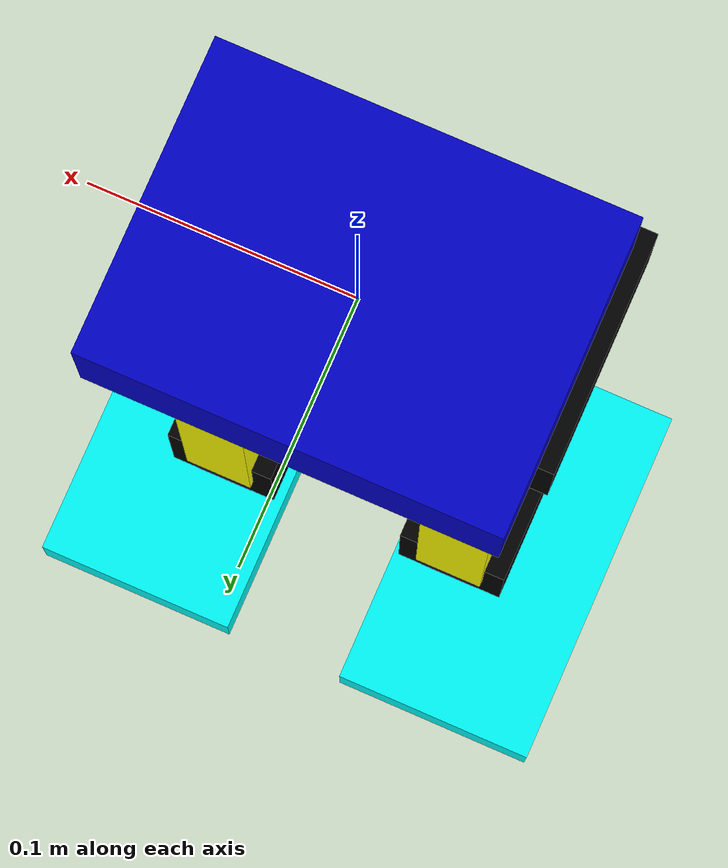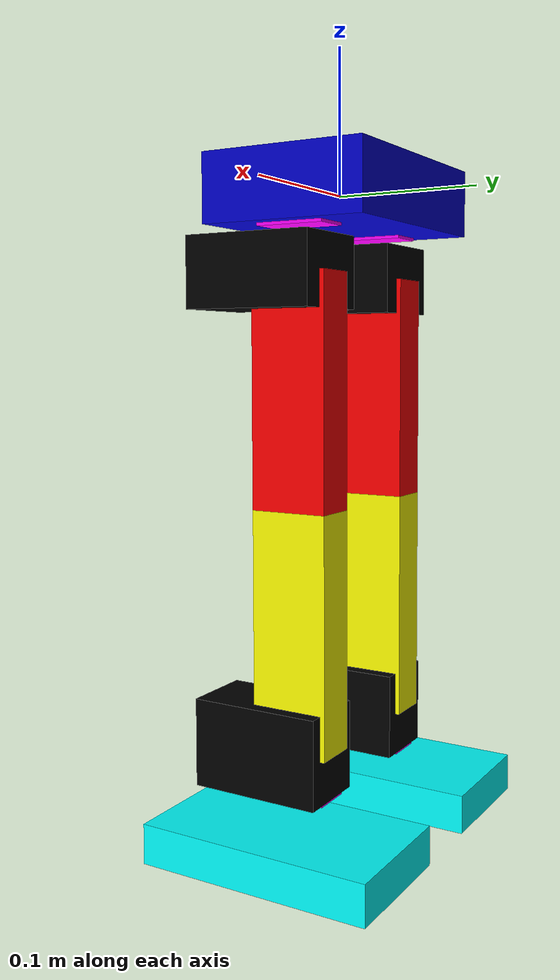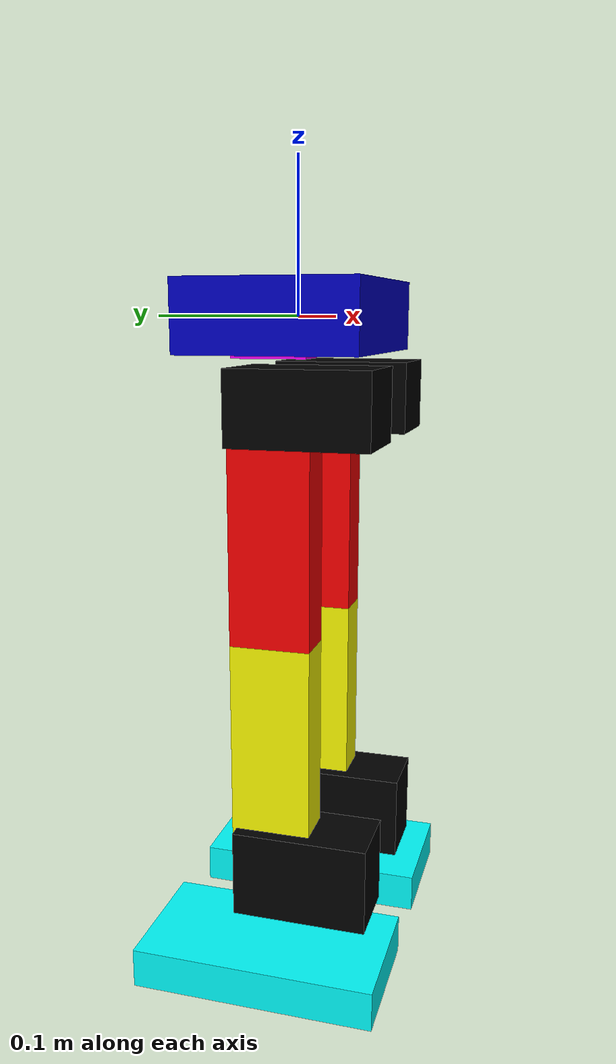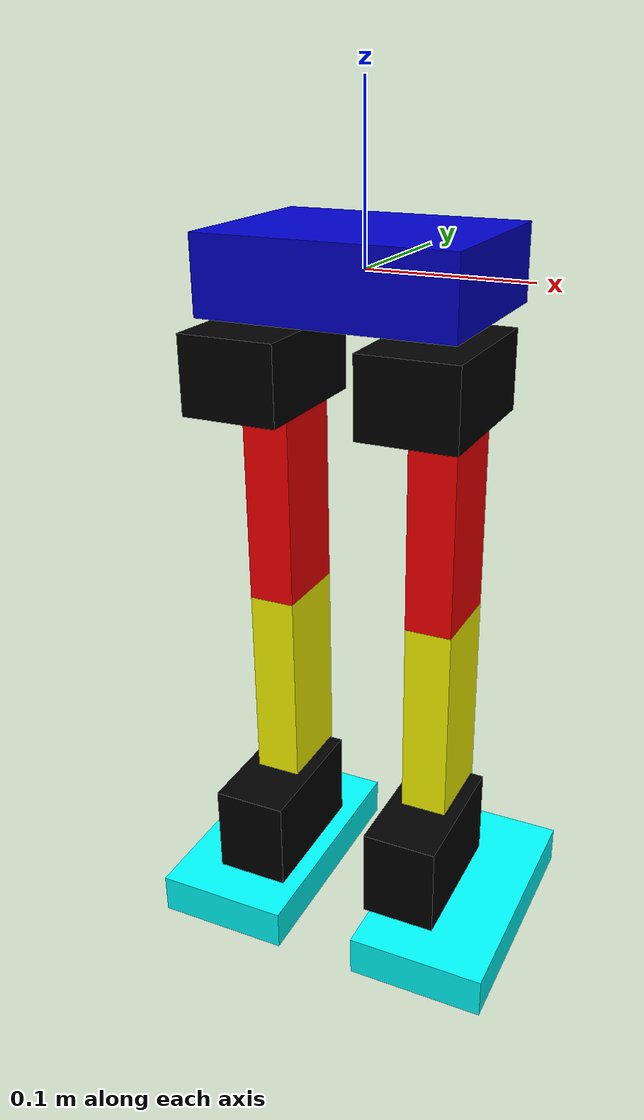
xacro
<?xml version="1.0"?>
<robot name="macroed" xmlns:xacro="http://ros.org/wiki/xacro">

 <!-- Unit in this file is determine in meter and kilogram -->

<!-- ###########################################################set up property #################################################################-->
  <xacro:property name="base_width" value="0.156" />
  <xacro:property name="base_length" value="0.118"/>
  <xacro:property name="base_height" value="0.0464"/>
  <xacro:property name="base_height_pos" value="1"/>

  <xacro:property name="right_hip_width" value="0.026"/>
  <xacro:property name="right_hip_length" value="0.048"/>
  <xacro:property name="right_hip_height" value="0.002"/>

  <xacro:property name="foot_width" value="0.027"/>
  <xacro:property name="foot_length" value="0.09"/>
  <xacro:property name="foot_height" value="0.165"/>

  <xacro:property name="upper_foot_width" value="0.026"/>
  <xacro:property name="upper_foot_length" value="0.054"/>
  <xacro:property name="upper_foot_height" value="0.029"/>

  <xacro:property name="right_bum_width" value="0.048"/>
  <xacro:property name="right_bum_length" value="0.0922"/>
  <xacro:property name="right_bum_height" value="0.06"/>

  <xacro:property name="upper_leg_width" value="0.054"/>
  <xacro:property name="upper_leg_length" value="0.03"/>
  <xacro:property name="upper_leg_height" value="0.1553"/>

  <xacro:property name="lower_leg_width" value="0.03"/>
  <xacro:property name="lower_leg_length" value="0.054"/>
  <xacro:property name="lower_leg_height" value="0.16039"/>

  <xacro:property name="ankel_width" value="0.048"/>
  <xacro:property name="ankel_length" value="0.0922"/>
  <xacro:property name="ankel_height" value="0.06"/>

  <xacro:property name="dynamixel_xm540_effort" value="10"/>
  <xacro:property name="dynamixel_xm540_velocity" value="3.1415"/>
  <xacro:property name="dynamixel_xm540_lower_limit" value="-3.14"/>
  <xacro:property name="dynamixel_xm540_upper_limit" value="3.14"/>

  <xacro:property name="dynamixel_xm430_effort" value="4.1"/>
  <xacro:property name="dynamixel_xm430_velocity" value="4.82"/>
  <xacro:property name="dynamixel_xm430_lower_limit" value="-3.14"/>
  <xacro:property name="dynamixel_xm430_upper_limit" value="3.14"/>

  <xacro:property name="pi" value="3.1415"/>
<!-- ###########################################################set up property #################################################################-->

<!-- ###########################################################set up material #################################################################-->
  <material name="blue">
    <color rgba="0 0 0.8 1"/>
  </material>

  <material name="black">
    <color rgba="0 0 0 1"/>
  </material>

  <material name="white">
    <color rgba="1 1 1 1"/>
  </material>

  <material name="red">
  <color rgba="1 0 0 1"/>
  </material>

  <material name="yellow">
  <color rgba="1 1 0 1"/>
  </material>

  <material name="turqouise">
  <color rgba="0 1 1 1"/>
  </material>

  <material name="violet">
  <color rgba="1 0 1 1"/>
  </material>
<!-- ###########################################################set up material #################################################################-->

  <xacro:macro name="base_inertial" params="mass">
    <inertial>
      <mass value="${mass}"/>
      <inertia ixx="1.0" ixy="0.0" ixz="0.0" iyy="1.0" iyz="0.0" izz="1.0" />
    </inertial>
  </xacro:macro>
<!-- add foot_print -->
  <link name="base_footprint">
    <visual>
      <origin xyz="0 0 0"/>
      <geometry>
        <box size="0 0 0"/>
      </geometry>
    </visual>
  </link>
  <joint name="base_footprint_to_base_link" type="fixed">
      <parent link="base_footprint"/>
      <child link="base_link"/>
      <origin xyz="0 0 0" />
  </joint>
<!-- add foot_print -->

  <!-- ################################################################## base link ########################################################-->

  <link name="base_link">
    <visual>
      <origin xyz="0 0 0"/>
      <geometry>
        <box size="${base_width} ${base_length} ${base_height}"/>
      </geometry>
      <material name="blue"/>
    </visual>
    <collision>
      <geometry>
        <box size="${base_width} ${base_length} ${base_height}"/>
      </geometry>
    </collision>
    <xacro:base_inertial mass="0.291"/>
  </link>

  <!-- ############################################################## macro robot's hip ####################################################-->

  <xacro:macro name="hip" params='prefix reflect member parent joint_type joint_rpy joint_xyz link_rpy'>
    <link name="${prefix}_${member}_link">
      <visual>
        <origin xyz= "0 0 0" rpy="${link_rpy}"/>
        <geometry>
          <box size="${right_hip_width} ${right_hip_length} ${right_hip_height}"/>
        </geometry>
        <material name="violet"/>
      </visual>
      <collision>
        <origin xyz="0 0 0" rpy="0 0 0"/>
        <geometry>
          <box size="${right_hip_width} ${right_hip_length} ${right_hip_height}"/>
        </geometry>
      </collision>
    </link>

    <joint name="${parent}_to_${prefix}_${member}_link" type="${joint_type}">
      <axis xyz="0 0 1" />
      <limit lower="${dynamixel_xm540_lower_limit}" upper="${dynamixel_xm430_upper_limit}"
              effort="${dynamixel_xm540_effort}" velocity="${dynamixel_xm540_velocity}"/>
      <parent link="${parent}"/>
      <child link="${prefix}_${member}_link"/>
      <origin xyz="${joint_xyz}" rpy="${joint_rpy}"/>
    </joint>
  </xacro:macro>
  <!-- right hip to base link -->
  <xacro:hip prefix="right" reflect="1" member="hip" parent="base_link" joint_type="revolute" joint_rpy="0 0 ${pi}"
  joint_xyz="${0.054} 0 ${-(base_height+right_hip_height)/2}" link_rpy="0 0 0"/>
  <!-- left hip to base link -->
  <xacro:hip prefix="left" reflect="-1" member="hip" parent="base_link" joint_type="revolute" joint_rpy="0 0 ${pi}"
  joint_xyz="${-0.054} 0 ${-(base_height+right_hip_height)/2}" link_rpy="0 0 0"/>
  <!-- right upper foot to right ankel -->
  <xacro:hip prefix="right" reflect="0" member="upper_foot" parent="right_ankel_link" joint_type="revolute" joint_rpy="${pi/2} 0 0"
  joint_xyz="${(ankel_height)/2} 0 0" link_rpy="${pi/2} 0 ${pi/2}"/>
  <!-- left upper foot to left ankel -->
  <xacro:hip prefix="left" reflect="0" member="upper_foot" parent="left_ankel_link" joint_type="revolute" joint_rpy="${pi/2} 0 0"
  joint_xyz="${(ankel_height)/2} 0 0" link_rpy="${pi/2} 0 ${pi/2}"/>

  <!-- ############################################################## macro robot's bum ####################################################-->
  <xacro:macro name="bum" params="prefix member parent joint_xyz joint_rpy size link_xyz">
    <link name="${prefix}_${member}_link">
      <visual>
        <origin rpy="${-pi/2} 0 ${pi/2}" xyz="${link_xyz}" />
        <geometry>
          <box size="${size}"/>
        </geometry>
        <material name="black"/>
      </visual>
      <collision>
        <geometry>
          <box size="${right_bum_width} ${right_bum_length} ${right_bum_height}"/>
        </geometry>
      </collision>
    </link>

    <joint name="${prefix}_${parent}_to_${prefix}_${member}" type="revolute">
      <axis xyz="0 0 1"/>
      <parent link="${prefix}_${parent}_link"/>
      <child link="${prefix}_${member}_link"/>
      <limit lower="${dynamixel_xm540_lower_limit}" upper="${dynamixel_xm430_upper_limit}"
              effort="${dynamixel_xm540_effort}" velocity="${dynamixel_xm540_velocity}"/>
      <origin xyz="${joint_xyz}" rpy="${joint_rpy}"/>
    </joint>
      <!-- origin may been wong because 'z' may be not bum height divine by 2, it might increse in 'z' axis -->
  </xacro:macro>
  <!-- right hip link to right bum link-->
  <xacro:bum prefix="right" member="bum" parent="hip" joint_xyz="0 0 ${-right_bum_height/2}"
  joint_rpy="${pi/2} 0 0" size="${right_bum_width} ${right_bum_length} ${right_bum_height}" link_xyz="0 0 -0.0221"/>
  <!-- left hip link to left bum link -->
  <xacro:bum prefix="left" member="bum" parent="hip" joint_xyz="0 0 ${-right_bum_height/2}"
  joint_rpy="${pi/2} 0 0" size="${right_bum_width} ${right_bum_length} ${right_bum_height}" link_xyz="0 0 -0.0221"/>
  <!-- right ankel link to right lower leg-->
  <xacro:bum prefix="right" member="ankel" parent="lower_leg" joint_xyz="${lower_leg_height} 0 0"
  joint_rpy="0 0 0" size="${right_bum_length} ${right_bum_width} ${right_bum_height}" link_xyz="0 0.0221 0"/>
  <!-- left ankel link to left lower leg -->
  <xacro:bum prefix="left" member="ankel" parent="lower_leg" joint_xyz="${lower_leg_height} 0 0"
  joint_rpy="0 0 0" size="${right_bum_length} ${right_bum_width} ${right_bum_height}" link_xyz="0 0.0221 0"/>

  <!--########################################################## macro robot's upper leg #######################################################-->
  <xacro:macro name="upper_leg" params="prefix">
    <link name="${prefix}_upper_leg_link">
      <visual>
        <origin xyz="${upper_leg_height/2} 0 0" rpy="${-pi/2} 0 ${-pi/2}"/>
        <geometry>
          <box size="${upper_leg_width} ${upper_leg_length} ${upper_leg_height}"/>
        </geometry>
        <material name="red"/>
      </visual>
      <collision>
        <geometry>
          <box size="${upper_leg_width} ${upper_leg_length} ${upper_leg_height}"/>
        </geometry>
      </collision>
    </link>

    <joint name="${prefix}_bum_to_${prefix}_upper_leg" type="revolute">
      <axis xyz="0 0 1"/>
      <limit lower="${dynamixel_xm540_lower_limit}" upper="${dynamixel_xm430_upper_limit}"
              effort="${dynamixel_xm540_effort}" velocity="${dynamixel_xm540_velocity}"/>
      <parent link="${prefix}_bum_link"/>
      <child link="${prefix}_upper_leg_link"/>
      <origin xyz="0 0 0" rpy="${-pi/2} 0 ${-pi/2}"/>
      <!-- origin must be the same with bum joint -->
    </joint>

  </xacro:macro>
  <xacro:upper_leg prefix="right"/>
  <xacro:upper_leg prefix="left"/>

  <!--########################################################## macro robot's lower leg #######################################################-->

  <xacro:macro name="lower_leg" params="prefix">
    <link name="${prefix}_lower_leg_link">
      <visual>
        <origin xyz="${lower_leg_height/2} 0 0" rpy="0 ${-pi/2} 0"/>
        <geometry>
          <box size="${lower_leg_width} ${lower_leg_length} ${lower_leg_height}"/>
        </geometry>
        <material name="yellow"/>
      </visual>
      <collision>
        <geometry>
          <box size="${lower_leg_width} ${lower_leg_length} ${lower_leg_height}"/>
        </geometry>
      </collision>
    </link>

  <joint name="${prefix}_upper_leg_to_${prefix}_lower_leg" type="revolute">
    <axis xyz="0 0 1"/>
    <limit lower="${dynamixel_xm540_lower_limit}" upper="${dynamixel_xm430_upper_limit}"
            effort="${dynamixel_xm540_effort}" velocity="${dynamixel_xm540_velocity}"/>
    <parent link="${prefix}_upper_leg_link"/>
    <child link="${prefix}_lower_leg_link"/>
    <origin xyz="${upper_leg_height} 0 0" rpy="0 0 0"/>
  </joint>
  </xacro:macro>
  <xacro:lower_leg prefix="right"/>
  <xacro:lower_leg prefix="left"/>

  <!--########################################################## macro robot's foot #######################################################-->

  <xacro:macro name="foot" params="prefix reflect">
    <link name="${prefix}_foot_link">
      <visual>
        <origin xyz="0 0 0"/>
        <geometry>
          <box size="${foot_width} ${foot_length} ${foot_height}"/>
        </geometry>
        <material name="turqouise"/>
      </visual>
      <collision>
        <geometry>
          <box size="${foot_width} ${foot_length} ${foot_height}"/>
        </geometry>
      </collision>
    </link>

    <joint name="${prefix}_upper_foot_to_${prefix}_foot" type="fixed">
      <parent link="${prefix}_upper_foot_link"/>
      <child link="${prefix}_foot_link"/>
      <origin xyz="0.029 ${0.018*reflect} 0" rpy="0 0 0"/>
    </joint>
  </xacro:macro>
  <xacro:foot prefix="right" reflect="-1"/>
  <xacro:foot prefix="left" reflect="1"/>

</robot>

  <!--########################################################## macro robot's upper foot #######################################################-->
